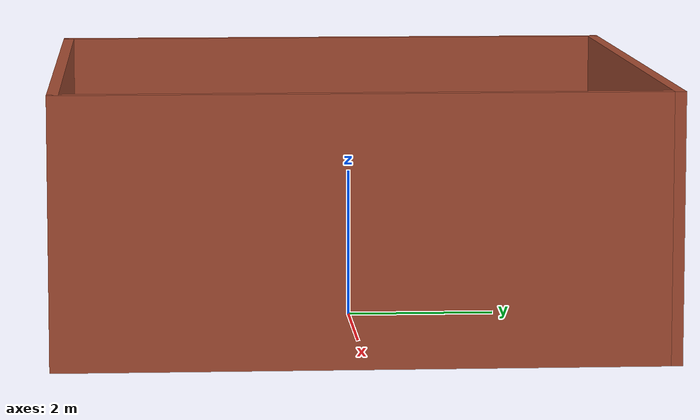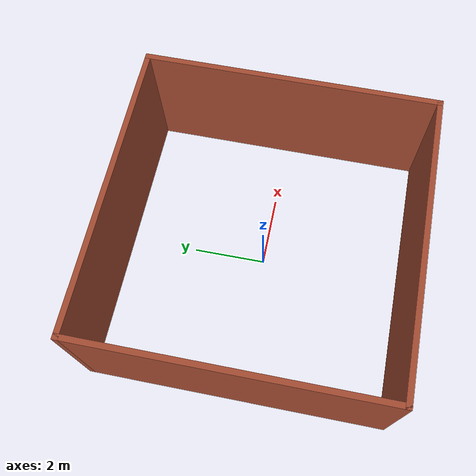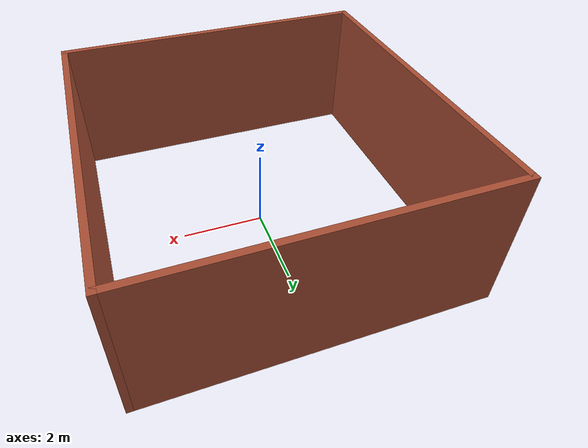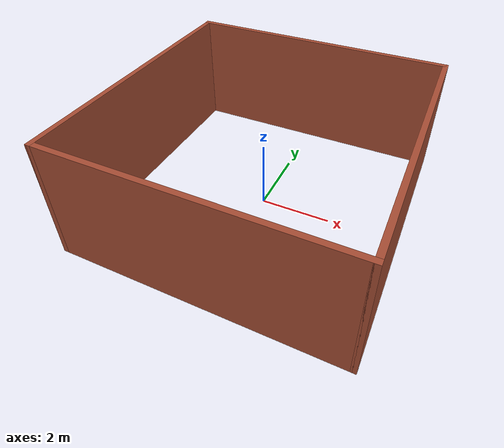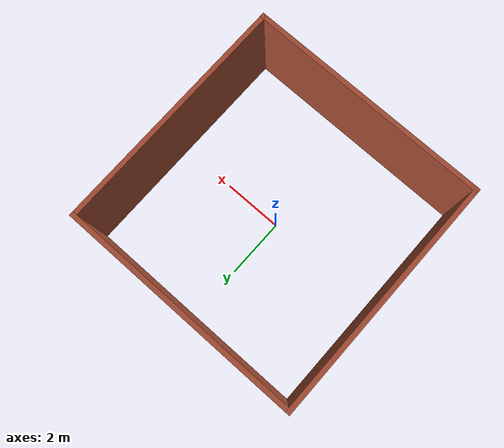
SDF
<?xml version='1.0'?>
<sdf version='1.5'>
  <model name='house_3'>
    <link name='Wall_13'>
      <pose frame=''>-3.925 0 0 0 0 -1.5708</pose>
      <self_collide>0</self_collide>
      <kinematic>0</kinematic>
      <visual name='Wall_13_Visual'>
        <pose frame=''>0 0 1.75 0 -0 0</pose>
        <geometry>
          <box>
            <size>8 0.15 3.5</size>
          </box>
        </geometry>
        <material>
          <script>
            <uri>file://media/materials/scripts/gazebo.material</uri>
            <name>Gazebo/Bricks</name>
          </script>
          <ambient>1 1 1 1</ambient>
          <diffuse>1 1 1 1</diffuse>
          <specular>0.2 0.2 0.2 1</specular>
          <emissive>0 0 0 1</emissive>
          <shader type='pixel'/>
        </material>
        <cast_shadows>1</cast_shadows>
        <transparency>0</transparency>
      </visual>
      <collision name='Wall_13_Collision'>
        <laser_retro>0</laser_retro>
        <max_contacts>10</max_contacts>
        <pose frame=''>0 0 1.75 0 -0 0</pose>
        <geometry>
          <box>
            <size>8 0.15 3.5</size>
          </box>
        </geometry>
        <surface>
          <friction>
            <ode>
              <mu>1</mu>
              <mu2>1</mu2>
              <fdir1>0 0 0</fdir1>
              <slip1>0</slip1>
              <slip2>0</slip2>
            </ode>
          </friction>
          <bounce>
            <restitution_coefficient>0</restitution_coefficient>
            <threshold>1e+06</threshold>
          </bounce>
          <contact>
            <collide_without_contact>0</collide_without_contact>
            <collide_without_contact_bitmask>1</collide_without_contact_bitmask>
            <collide_bitmask>1</collide_bitmask>
            <ode>
              <soft_cfm>0</soft_cfm>
              <soft_erp>0.2</soft_erp>
              <kp>1e+13</kp>
              <kd>1</kd>
              <max_vel>0.01</max_vel>
              <min_depth>0</min_depth>
            </ode>
            <bullet>
              <split_impulse>1</split_impulse>
              <split_impulse_penetration_threshold>-0.01</split_impulse_penetration_threshold>
              <soft_cfm>0</soft_cfm>
              <soft_erp>0.2</soft_erp>
              <kp>1e+13</kp>
              <kd>1</kd>
            </bullet>
          </contact>
        </surface>
      </collision>
    </link>
    <link name='Wall_14'>
      <pose frame=''>0 -3.925 0 0 -0 0</pose>
      <self_collide>0</self_collide>
      <kinematic>0</kinematic>
      <visual name='Wall_14_Visual'>
        <pose frame=''>0 0 1.75 0 -0 0</pose>
        <geometry>
          <box>
            <size>8 0.15 3.5</size>
          </box>
        </geometry>
        <material>
          <script>
            <uri>file://media/materials/scripts/gazebo.material</uri>
            <name>Gazebo/Bricks</name>
          </script>
          <ambient>1 1 1 1</ambient>
          <diffuse>1 1 1 1</diffuse>
          <specular>0.2 0.2 0.2 1</specular>
          <emissive>0 0 0 1</emissive>
          <shader type='pixel'/>
        </material>
        <cast_shadows>1</cast_shadows>
        <transparency>0</transparency>
      </visual>
      <collision name='Wall_14_Collision'>
        <laser_retro>0</laser_retro>
        <max_contacts>10</max_contacts>
        <pose frame=''>0 0 1.75 0 -0 0</pose>
        <geometry>
          <box>
            <size>8 0.15 3.5</size>
          </box>
        </geometry>
        <surface>
          <friction>
            <ode>
              <mu>1</mu>
              <mu2>1</mu2>
              <fdir1>0 0 0</fdir1>
              <slip1>0</slip1>
              <slip2>0</slip2>
            </ode>
          </friction>
          <bounce>
            <restitution_coefficient>0</restitution_coefficient>
            <threshold>1e+06</threshold>
          </bounce>
          <contact>
            <collide_without_contact>0</collide_without_contact>
            <collide_without_contact_bitmask>1</collide_without_contact_bitmask>
            <collide_bitmask>1</collide_bitmask>
            <ode>
              <soft_cfm>0</soft_cfm>
              <soft_erp>0.2</soft_erp>
              <kp>1e+13</kp>
              <kd>1</kd>
              <max_vel>0.01</max_vel>
              <min_depth>0</min_depth>
            </ode>
            <bullet>
              <split_impulse>1</split_impulse>
              <split_impulse_penetration_threshold>-0.01</split_impulse_penetration_threshold>
              <soft_cfm>0</soft_cfm>
              <soft_erp>0.2</soft_erp>
              <kp>1e+13</kp>
              <kd>1</kd>
            </bullet>
          </contact>
        </surface>
      </collision>
    </link>
    <link name='Wall_15'>
      <pose frame=''>3.925 0 0 0 -0 1.5708</pose>
      <self_collide>0</self_collide>
      <kinematic>0</kinematic>
      <visual name='Wall_15_Visual'>
        <pose frame=''>0 0 1.75 0 -0 0</pose>
        <geometry>
          <box>
            <size>8 0.15 3.5</size>
          </box>
        </geometry>
        <material>
          <script>
            <uri>file://media/materials/scripts/gazebo.material</uri>
            <name>Gazebo/Bricks</name>
          </script>
          <ambient>1 1 1 1</ambient>
          <diffuse>1 1 1 1</diffuse>
          <specular>0.2 0.2 0.2 1</specular>
          <emissive>0 0 0 1</emissive>
          <shader type='pixel'/>
        </material>
        <cast_shadows>1</cast_shadows>
        <transparency>0</transparency>
      </visual>
      <collision name='Wall_15_Collision'>
        <laser_retro>0</laser_retro>
        <max_contacts>10</max_contacts>
        <pose frame=''>0 0 1.75 0 -0 0</pose>
        <geometry>
          <box>
            <size>8 0.15 3.5</size>
          </box>
        </geometry>
        <surface>
          <friction>
            <ode>
              <mu>1</mu>
              <mu2>1</mu2>
              <fdir1>0 0 0</fdir1>
              <slip1>0</slip1>
              <slip2>0</slip2>
            </ode>
          </friction>
          <bounce>
            <restitution_coefficient>0</restitution_coefficient>
            <threshold>1e+06</threshold>
          </bounce>
          <contact>
            <collide_without_contact>0</collide_without_contact>
            <collide_without_contact_bitmask>1</collide_without_contact_bitmask>
            <collide_bitmask>1</collide_bitmask>
            <ode>
              <soft_cfm>0</soft_cfm>
              <soft_erp>0.2</soft_erp>
              <kp>1e+13</kp>
              <kd>1</kd>
              <max_vel>0.01</max_vel>
              <min_depth>0</min_depth>
            </ode>
            <bullet>
              <split_impulse>1</split_impulse>
              <split_impulse_penetration_threshold>-0.01</split_impulse_penetration_threshold>
              <soft_cfm>0</soft_cfm>
              <soft_erp>0.2</soft_erp>
              <kp>1e+13</kp>
              <kd>1</kd>
            </bullet>
          </contact>
        </surface>
      </collision>
    </link>
    <link name='Wall_16'>
      <pose frame=''>0 3.925 0 0 -0 3.14159</pose>
      <self_collide>0</self_collide>
      <kinematic>0</kinematic>
      <visual name='Wall_16_Visual'>
        <pose frame=''>0 0 1.75 0 -0 0</pose>
        <geometry>
          <box>
            <size>8 0.15 3.5</size>
          </box>
        </geometry>
        <material>
          <script>
            <uri>file://media/materials/scripts/gazebo.material</uri>
            <name>Gazebo/Bricks</name>
          </script>
          <ambient>1 1 1 1</ambient>
          <diffuse>1 1 1 1</diffuse>
          <specular>0.2 0.2 0.2 1</specular>
          <emissive>0 0 0 1</emissive>
          <shader type='pixel'/>
        </material>
        <cast_shadows>1</cast_shadows>
        <transparency>0</transparency>
      </visual>
      <collision name='Wall_16_Collision'>
        <laser_retro>0</laser_retro>
        <max_contacts>10</max_contacts>
        <pose frame=''>0 0 1.75 0 -0 0</pose>
        <geometry>
          <box>
            <size>8 0.15 3.5</size>
          </box>
        </geometry>
        <surface>
          <friction>
            <ode>
              <mu>1</mu>
              <mu2>1</mu2>
              <fdir1>0 0 0</fdir1>
              <slip1>0</slip1>
              <slip2>0</slip2>
            </ode>
          </friction>
          <bounce>
            <restitution_coefficient>0</restitution_coefficient>
            <threshold>1e+06</threshold>
          </bounce>
          <contact>
            <collide_without_contact>0</collide_without_contact>
            <collide_without_contact_bitmask>1</collide_without_contact_bitmask>
            <collide_bitmask>1</collide_bitmask>
            <ode>
              <soft_cfm>0</soft_cfm>
              <soft_erp>0.2</soft_erp>
              <kp>1e+13</kp>
              <kd>1</kd>
              <max_vel>0.01</max_vel>
              <min_depth>0</min_depth>
            </ode>
            <bullet>
              <split_impulse>1</split_impulse>
              <split_impulse_penetration_threshold>-0.01</split_impulse_penetration_threshold>
              <soft_cfm>0</soft_cfm>
              <soft_erp>0.2</soft_erp>
              <kp>1e+13</kp>
              <kd>1</kd>
            </bullet>
          </contact>
        </surface>
      </collision>
    </link>
    <static>1</static>
    <allow_auto_disable>1</allow_auto_disable>
  </model>
</sdf>
